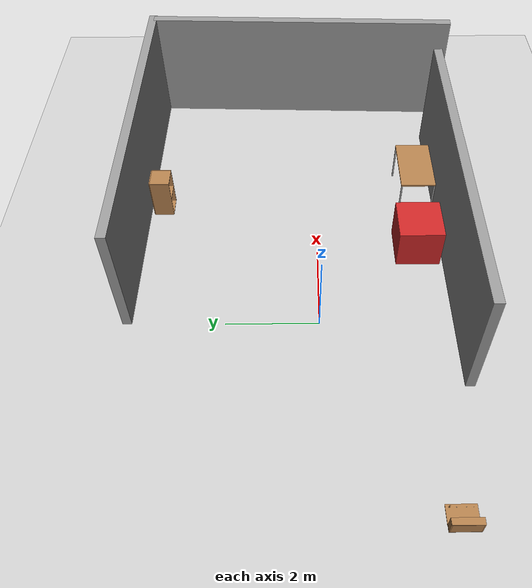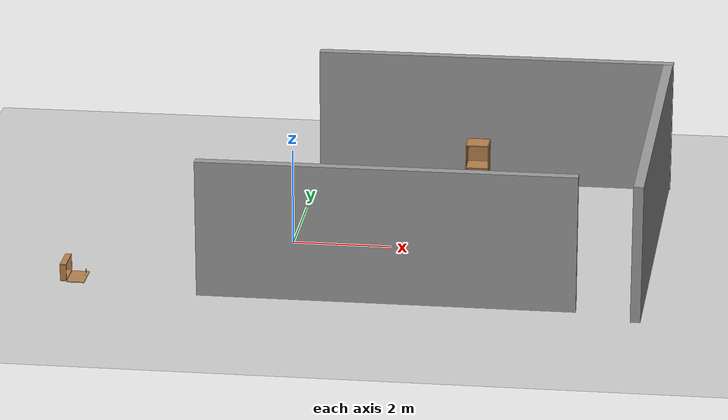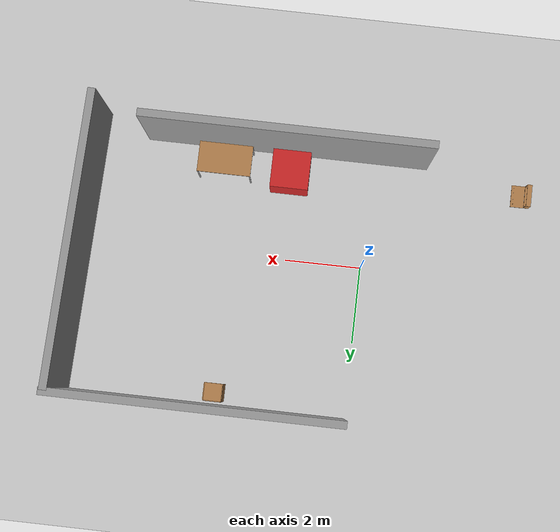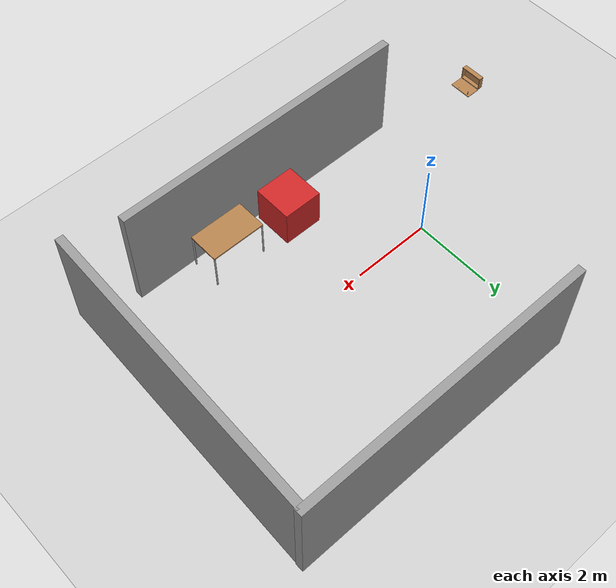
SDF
<sdf version="1.6">
 <world name="default">
  <model name="ground_plane">
   <static>1</static>
   <link name="link">
    <collision name="collision">
     <geometry><plane><normal>0 0 1</normal><size>100 100</size></plane></geometry>
     <surface><friction><ode><mu>100</mu><mu2>50</mu2></ode></friction></surface>
    </collision>
    <visual name="visual">
     <transparency>1</transparency>
     <cast_shadows>0</cast_shadows>
     <geometry><plane><normal>0 0 1</normal><size>100 100</size></plane></geometry>
     <material>
      <script><uri>file://media/materials/scripts/gazebo.material</uri><name>Gazebo/Grey</name></script>
     </material>
    </visual>
   </link>
  </model>
  <model name="grey_wall_clone">
   <static>1</static>
   <link name="link">
    <pose>0 0 1.4 0 -0 0</pose>
    <collision name="collision"><geometry><box><size>7.5 0.2 2.8</size></box></geometry></collision>
    <visual name="visual">
     <cast_shadows>0</cast_shadows>
     <geometry><box><size>7.5 0.2 2.8</size></box></geometry>
     <material>
      <script>
       <uri>model://grey_wall/materials/scripts</uri>
       <uri>model://grey_wall/materials/textures</uri>
       <name>vrc/grey_wall</name>
      </script>
     </material>
    </visual>
   </link>
   <pose>2.24313 -2.95687 0 0 -0 0</pose>
  </model>
  <model name="grey_wall_clone_0_clone_clone">
   <static>1</static>
   <link name="link">
    <pose>0 0 1.4 0 -0 0</pose>
    <collision name="collision"><geometry><box><size>7.5 0.2 2.8</size></box></geometry></collision>
    <visual name="visual">
     <cast_shadows>0</cast_shadows>
     <geometry><box><size>7.5 0.2 2.8</size></box></geometry>
     <material>
      <script>
       <uri>model://grey_wall/materials/scripts</uri>
       <uri>model://grey_wall/materials/textures</uri>
       <name>vrc/grey_wall</name>
      </script>
     </material>
    </visual>
   </link>
   <pose>3.76581 4.09121 0 0 -0 0</pose>
  </model>
  <model name="table">
   <static>0</static>
   <link name="link">
    <collision name="surface">
     <pose>0 0 1 0 -0 0</pose>
     <geometry><box><size>1.5 0.8 0.03</size></box></geometry>
     <surface><friction><ode><mu>0.6</mu><mu2>0.6</mu2></ode></friction></surface>
    </collision>
    <visual name="visual1">
     <pose>0 0 1 0 -0 0</pose>
     <geometry><box><size>1.4 0.8 0.04</size></box></geometry>
     <material>
      <script><uri>file://media/materials/scripts/gazebo.material</uri><name>Gazebo/Wood</name></script>
     </material>
    </visual>
    <collision name="front_left_leg">
     <pose>0.68 0.38 0.5 0 -0 0</pose>
     <geometry><cylinder><radius>0.02</radius><length>1</length></cylinder></geometry>
    </collision>
    <visual name="front_left_leg">
     <pose>0.68 0.38 0.5 0 -0 0</pose>
     <geometry><cylinder><radius>0.02</radius><length>1</length></cylinder></geometry>
     <material>
      <script><uri>file://media/materials/scripts/gazebo.material</uri><name>Gazebo/Grey</name></script>
     </material>
    </visual>
    <collision name="front_right_leg">
     <pose>0.68 -0.38 0.5 0 -0 0</pose>
     <geometry><cylinder><radius>0.02</radius><length>1</length></cylinder></geometry>
    </collision>
    <visual name="front_right_leg">
     <pose>0.68 -0.38 0.5 0 -0 0</pose>
     <geometry><cylinder><radius>0.02</radius><length>1</length></cylinder></geometry>
     <material>
      <script><uri>file://media/materials/scripts/gazebo.material</uri><name>Gazebo/Grey</name></script>
     </material>
    </visual>
    <collision name="back_right_leg">
     <pose>-0.68 -0.38 0.5 0 -0 0</pose>
     <geometry><cylinder><radius>0.02</radius><length>1</length></cylinder></geometry>
    </collision>
    <visual name="back_right_leg">
     <pose>-0.68 -0.38 0.5 0 -0 0</pose>
     <geometry><cylinder><radius>0.02</radius><length>1</length></cylinder></geometry>
     <material>
      <script><uri>file://media/materials/scripts/gazebo.material</uri><name>Gazebo/Grey</name></script>
     </material>
    </visual>
    <collision name="back_left_leg">
     <pose>-0.68 0.38 0.5 0 -0 0</pose>
     <geometry><cylinder><radius>0.02</radius><length>1</length></cylinder></geometry>
    </collision>
    <visual name="back_left_leg">
     <pose>-0.68 0.38 0.5 0 -0 0</pose>
     <geometry><cylinder><radius>0.02</radius><length>1</length></cylinder></geometry>
     <material>
      <script><uri>file://media/materials/scripts/gazebo.material</uri><name>Gazebo/Grey</name></script>
     </material>
    </visual>
    <inertial>
     <inertia><ixx>1</ixx><ixy>0</ixy><ixz>0</ixz><iyy>1</iyy><iyz>0</iyz><izz>1</izz></inertia>
     <mass>1</mass>
    </inertial>
   </link>
   <pose>3.83416 -2.36948 -1e-06 0 1e-06 0</pose>
  </model>
  <model name="cabinet">
   <static>1</static>
   <link name="cabinet_bottom_plate">
    <inertial>
     <pose>0 0 -1 0 -0 0</pose>
     <inertia><ixx>2.05</ixx><ixy>0</ixy><ixz>0</ixz><iyy>2.05</iyy><iyz>0</iyz><izz>2.05</izz></inertia>
     <mass>25</mass>
    </inertial>
    <collision name="cabinet_bottom_plate_geom">
     <pose>0 0 0.01 0 -0 0</pose>
     <geometry><box><size>0.45 0.45 0.02</size></box></geometry>
    </collision>
    <visual name="cabinet_bottom_plate_geom_visual">
     <pose>0 0 0.01 0 -0 0</pose>
     <geometry><box><size>0.45 0.45 0.02</size></box></geometry>
     <material>
      <script><uri>file://media/materials/scripts/gazebo.material</uri><name>Gazebo/Wood</name></script>
     </material>
    </visual>
    <collision name="cabinet_bottom_plate_geom_cabinet_back_plate">
     <pose>0.235 0 0.51 0 -0 0</pose>
     <geometry><box><size>0.02 0.45 1.02</size></box></geometry>
    </collision>
    <visual name="cabinet_bottom_plate_geom_cabinet_back_plate_visual">
     <pose>0.235 0 0.51 0 -0 0</pose>
     <geometry><box><size>0.02 0.45 1.02</size></box></geometry>
     <material>
      <script><uri>file://media/materials/scripts/gazebo.material</uri><name>Gazebo/Wood</name></script>
     </material>
    </visual>
    <collision name="cabinet_bottom_plate_geom_cabinet_left_plate">
     <pose>0 0.235 0.51 0 -0 0</pose>
     <geometry><box><size>0.45 0.02 1.02</size></box></geometry>
    </collision>
    <visual name="cabinet_bottom_plate_geom_cabinet_left_plate_visual">
     <pose>0 0.235 0.51 0 -0 0</pose>
     <geometry><box><size>0.45 0.02 1.02</size></box></geometry>
     <material>
      <script><uri>file://media/materials/scripts/gazebo.material</uri><name>Gazebo/Wood</name></script>
     </material>
    </visual>
    <collision name="cabinet_bottom_plate_geom_cabinet_middle_plate">
     <pose>0 0 0.51 0 -0 0</pose>
     <geometry><box><size>0.45 0.45 0.02</size></box></geometry>
    </collision>
    <visual name="cabinet_bottom_plate_geom_cabinet_middle_plate_visual">
     <pose>0 0 0.51 0 -0 0</pose>
     <geometry><box><size>0.45 0.45 0.02</size></box></geometry>
     <material>
      <script><uri>file://media/materials/scripts/gazebo.material</uri><name>Gazebo/Wood</name></script>
     </material>
    </visual>
    <collision name="cabinet_bottom_plate_geom_cabinet_right_plate">
     <pose>0 -0.235 0.51 0 -0 0</pose>
     <geometry><box><size>0.45 0.02 1.02</size></box></geometry>
    </collision>
    <visual name="cabinet_bottom_plate_geom_cabinet_right_plate_visual">
     <pose>0 -0.235 0.51 0 -0 0</pose>
     <geometry><box><size>0.45 0.02 1.02</size></box></geometry>
     <material>
      <script><uri>file://media/materials/scripts/gazebo.material</uri><name>Gazebo/Wood</name></script>
     </material>
    </visual>
    <collision name="cabinet_bottom_plate_geom_cabinet_top_plate">
     <pose>0 0 1.01 0 -0 0</pose>
     <geometry><box><size>0.45 0.45 0.02</size></box></geometry>
    </collision>
    <visual name="cabinet_bottom_plate_geom_cabinet_top_plate_visual">
     <pose>0 0 1.01 0 -0 0</pose>
     <geometry><box><size>0.45 0.45 0.02</size></box></geometry>
     <material>
      <script><uri>file://media/materials/scripts/gazebo.material</uri><name>Gazebo/Wood</name></script>
     </material>
    </visual>
   </link>
   <pose>3.44115 3.673 0 0 -0 1.57331</pose>
  </model>
  <model name="wooden_case_wooden_peg">
   <link name="wooden_case::base">
    <pose>0 0 0.024 0 -0 0</pose>
    <inertial>
     <pose>-0.022184 0 0.171592 0 -0 0</pose>
     <mass>3.96264</mass>
     <inertia>
      <ixx>0.213536</ixx>
      <ixy>0</ixy>
      <ixz>0.000779377</ixz>
      <iyy>0.0708943</iyy>
      <iyz>0</iyz>
      <izz>0.154604</izz>
     </inertia>
    </inertial>
    <collision name="collision_back">
     <pose>-0.053975 0 0.1778 0 -0 0</pose>
     <geometry><box><size>0.01905 0.5461 0.3175</size></box></geometry>
     <surface>
      <contact>
       <poissons_ratio>0.347</poissons_ratio>
       <elastic_modulus>8.8e+09</elastic_modulus>
       <ode><kp>100000</kp><kd>100</kd><max_vel>100</max_vel><min_depth>0.001</min_depth></ode>
      </contact>
      <friction>
       <torsional>
        <coefficient>1</coefficient>
        <use_patch_radius>0</use_patch_radius>
        <surface_radius>0.01</surface_radius>
       </torsional>
      </friction>
     </surface>
    </collision>
    <visual name="visual_back">
     <pose>-0.053975 0 0.1778 0 -0 0</pose>
     <geometry><box><size>0.01905 0.5461 0.3175</size></box></geometry>
     <material>
      <script><uri>file://media/materials/scripts/gazebo.material</uri><name>Gazebo/Wood</name></script>
     </material>
    </visual>
    <collision name="collision_bottom">
     <pose>0 0 0.009525 0 -0 0</pose>
     <geometry><box><size>0.127 0.5842 0.01905</size></box></geometry>
     <surface>
      <contact>
       <poissons_ratio>0.347</poissons_ratio>
       <elastic_modulus>8.8e+09</elastic_modulus>
       <ode><kp>100000</kp><kd>100</kd><max_vel>100</max_vel><min_depth>0.001</min_depth></ode>
      </contact>
      <friction>
       <torsional>
        <coefficient>1</coefficient>
        <use_patch_radius>0</use_patch_radius>
        <surface_radius>0.01</surface_radius>
       </torsional>
      </friction>
     </surface>
    </collision>
    <visual name="visual_bottom">
     <pose>0 0 0.009525 0 -0 0</pose>
     <geometry><box><size>0.127 0.5842 0.01905</size></box></geometry>
     <material>
      <script><uri>file://media/materials/scripts/gazebo.material</uri><name>Gazebo/Wood</name></script>
     </material>
    </visual>
    <collision name="collision_top">
     <pose>0 0 0.346075 0 -0 0</pose>
     <geometry><box><size>0.127 0.5842 0.01905</size></box></geometry>
     <surface>
      <contact>
       <poissons_ratio>0.347</poissons_ratio>
       <elastic_modulus>8.8e+09</elastic_modulus>
       <ode><kp>100000</kp><kd>100</kd><max_vel>100</max_vel><min_depth>0.001</min_depth></ode>
      </contact>
      <friction>
       <torsional>
        <coefficient>1</coefficient>
        <use_patch_radius>0</use_patch_radius>
        <surface_radius>0.01</surface_radius>
       </torsional>
      </friction>
     </surface>
    </collision>
    <visual name="visual_top">
     <pose>0 0 0.346075 0 -0 0</pose>
     <geometry><box><size>0.127 0.5842 0.01905</size></box></geometry>
     <material>
      <script><uri>file://media/materials/scripts/gazebo.material</uri><name>Gazebo/Wood</name></script>
     </material>
    </visual>
    <collision name="collision_left">
     <pose>0 -0.282575 0.1778 0 -0 0</pose>
     <geometry><box><size>0.127 0.01905 0.3175</size></box></geometry>
     <surface>
      <contact>
       <poissons_ratio>0.347</poissons_ratio>
       <elastic_modulus>8.8e+09</elastic_modulus>
       <ode><kp>100000</kp><kd>100</kd><max_vel>100</max_vel><min_depth>0.001</min_depth></ode>
      </contact>
      <friction>
       <torsional>
        <coefficient>1</coefficient>
        <use_patch_radius>0</use_patch_radius>
        <surface_radius>0.01</surface_radius>
       </torsional>
      </friction>
     </surface>
    </collision>
    <visual name="visual_left">
     <pose>0 -0.282575 0.1778 0 -0 0</pose>
     <geometry><box><size>0.127 0.01905 0.3175</size></box></geometry>
     <material>
      <script><uri>file://media/materials/scripts/gazebo.material</uri><name>Gazebo/Wood</name></script>
     </material>
    </visual>
    <collision name="collision_right">
     <pose>0 0.282575 0.1778 0 -0 0</pose>
     <geometry><box><size>0.127 0.01905 0.3175</size></box></geometry>
     <surface>
      <contact>
       <poissons_ratio>0.347</poissons_ratio>
       <elastic_modulus>8.8e+09</elastic_modulus>
       <ode><kp>100000</kp><kd>100</kd><max_vel>100</max_vel><min_depth>0.001</min_depth></ode>
      </contact>
      <friction>
       <torsional>
        <coefficient>1</coefficient>
        <use_patch_radius>0</use_patch_radius>
        <surface_radius>0.01</surface_radius>
       </torsional>
      </friction>
     </surface>
    </collision>
    <visual name="visual_right">
     <pose>0 0.282575 0.1778 0 -0 0</pose>
     <geometry><box><size>0.127 0.01905 0.3175</size></box></geometry>
     <material>
      <script><uri>file://media/materials/scripts/gazebo.material</uri><name>Gazebo/Wood</name></script>
     </material>
    </visual>
    <collision name="collision_block_left">
     <pose>0.0095 -0.2151 -0.012 0 -0 0</pose>
     <geometry><box><size>0.108 0.05 0.024</size></box></geometry>
     <surface>
      <contact>
       <poissons_ratio>0.347</poissons_ratio>
       <elastic_modulus>8.8e+09</elastic_modulus>
       <ode><kp>100000</kp><kd>100</kd><max_vel>100</max_vel><min_depth>0.001</min_depth></ode>
      </contact>
      <friction>
       <torsional>
        <coefficient>1</coefficient>
        <use_patch_radius>0</use_patch_radius>
        <surface_radius>0.01</surface_radius>
       </torsional>
      </friction>
     </surface>
    </collision>
    <visual name="visual_block_left">
     <pose>0.0095 -0.2151 -0.012 0 -0 0</pose>
     <geometry><box><size>0.108 0.05 0.024</size></box></geometry>
     <material>
      <script><uri>file://media/materials/scripts/gazebo.material</uri><name>Gazebo/Wood</name></script>
     </material>
    </visual>
    <collision name="collision_block_right">
     <pose>0.0095 0.2151 -0.012 0 -0 0</pose>
     <geometry><box><size>0.108 0.05 0.024</size></box></geometry>
     <surface>
      <contact>
       <poissons_ratio>0.347</poissons_ratio>
       <elastic_modulus>8.8e+09</elastic_modulus>
       <ode><kp>100000</kp><kd>100</kd><max_vel>100</max_vel><min_depth>0.001</min_depth></ode>
      </contact>
      <friction>
       <torsional>
        <coefficient>1</coefficient>
        <use_patch_radius>0</use_patch_radius>
        <surface_radius>0.01</surface_radius>
       </torsional>
      </friction>
     </surface>
    </collision>
    <visual name="visual_block_right">
     <pose>0.0095 0.2151 -0.012 0 -0 0</pose>
     <geometry><box><size>0.108 0.05 0.024</size></box></geometry>
     <material>
      <script><uri>file://media/materials/scripts/gazebo.material</uri><name>Gazebo/Wood</name></script>
     </material>
    </visual>
   </link>
   <link name="wooden_case::lid">
    <pose>0.243775 0 0.009525 0 -0 0</pose>
    <inertial>
     <mass>1.97874</mass>
     <inertia>
      <ixx>0.0563367</ixx>
      <ixy>0</ixy>
      <ixz>0</ixz>
      <iyy>0.020911</iyy>
      <iyz>0</iyz>
      <izz>0.0771281</izz>
     </inertia>
    </inertial>
    <collision name="collision">
     <geometry><box><size>0.3556 0.5842 0.01905</size></box></geometry>
     <surface>
      <contact>
       <poissons_ratio>0.347</poissons_ratio>
       <elastic_modulus>8.8e+09</elastic_modulus>
       <ode><kp>100000</kp><kd>100</kd><max_vel>100</max_vel><min_depth>0.001</min_depth></ode>
      </contact>
      <friction>
       <torsional>
        <coefficient>1</coefficient>
        <use_patch_radius>0</use_patch_radius>
        <surface_radius>0.01</surface_radius>
       </torsional>
      </friction>
     </surface>
    </collision>
    <visual name="visual">
     <geometry><box><size>0.3556 0.5842 0.01905</size></box></geometry>
     <material>
      <script><uri>file://media/materials/scripts/gazebo.material</uri><name>Gazebo/Wood</name></script>
     </material>
    </visual>
    <visual name="tee_nut_1">
     <pose>0.122 -0.216 0 0 -0 0</pose>
     <geometry><cylinder><radius>0.00635</radius><length>0.0192405</length></cylinder></geometry>
     <material>
      <script><uri>file://media/materials/scripts/gazebo.material</uri><name>Gazebo/Grey</name></script>
     </material>
    </visual>
    <visual name="tee_nut_2">
     <pose>0.122 -0.088 0 0 -0 0</pose>
     <geometry><cylinder><radius>0.00635</radius><length>0.0192405</length></cylinder></geometry>
     <material>
      <script><uri>file://media/materials/scripts/gazebo.material</uri><name>Gazebo/Grey</name></script>
     </material>
    </visual>
    <visual name="tee_nut_3">
     <pose>0.122 0.088 0 0 -0 0</pose>
     <geometry><cylinder><radius>0.00635</radius><length>0.0192405</length></cylinder></geometry>
     <material>
      <script><uri>file://media/materials/scripts/gazebo.material</uri><name>Gazebo/Grey</name></script>
     </material>
    </visual>
    <visual name="tee_nut_4">
     <pose>0.122 0.216 0 0 -0 0</pose>
     <geometry><cylinder><radius>0.00635</radius><length>0.0192405</length></cylinder></geometry>
     <material>
      <script><uri>file://media/materials/scripts/gazebo.material</uri><name>Gazebo/Grey</name></script>
     </material>
    </visual>
   </link>
   <joint name="wooden_case::lid_hinge" type="revolute">
    <pose>-0.1778 0 0.01905 0 -0 0</pose>
    <parent>wooden_case::base</parent>
    <child>wooden_case::lid</child>
    <axis>
     <xyz>0 1 0</xyz>
     <limit><upper>0.523599</upper><lower>-1.5708</lower></limit>
     <use_parent_model_frame>0</use_parent_model_frame>
     <dynamics><spring_reference>0</spring_reference><spring_stiffness>0</spring_stiffness></dynamics>
    </axis>
   </joint>
   <link name="peg::link">
    <pose>0.365774 0.216 0.05905 0 -0 0</pose>
    <inertial>
     <mass>0.0175</mass>
     <inertia>
      <ixx>9.74923e-06</ixx>
      <ixy>0</ixy>
      <ixz>0</ixz>
      <iyy>9.74923e-06</iyy>
      <iyz>0</iyz>
      <izz>8.31797e-07</izz>
     </inertia>
    </inertial>
    <collision name="collision">
     <geometry><cylinder><radius>0.00975</radius><length>0.08</length></cylinder></geometry>
     <surface>
      <contact>
       <poissons_ratio>0.347</poissons_ratio>
       <elastic_modulus>8.8e+09</elastic_modulus>
       <ode><kp>100000</kp><kd>100</kd><max_vel>100</max_vel><min_depth>0.001</min_depth></ode>
      </contact>
      <friction>
       <torsional>
        <coefficient>1</coefficient>
        <use_patch_radius>0</use_patch_radius>
        <surface_radius>0.01</surface_radius>
       </torsional>
      </friction>
     </surface>
    </collision>
    <visual name="visual">
     <geometry><cylinder><radius>0.00975</radius><length>0.08</length></cylinder></geometry>
     <material>
      <script><uri>file://media/materials/scripts/gazebo.material</uri><name>Gazebo/Wood</name></script>
     </material>
    </visual>
   </link>
   <joint name="case_peg" type="revolute">
    <child>peg::link</child>
    <parent>wooden_case::lid</parent>
    <axis>
     <xyz>0 0 1</xyz>
     <limit><upper>0</upper><lower>0</lower></limit>
     <use_parent_model_frame>0</use_parent_model_frame>
     <dynamics><spring_reference>0</spring_reference><spring_stiffness>0</spring_stiffness></dynamics>
    </axis>
   </joint>
   <pose>-4.25055 -2.39495 -0.001057 -1e-06 -0.000428 0</pose>
  </model>
  <model name="unit_box_0_clone">
   <pose>2.10371 -2.28423 0.499995 1e-05 -0 0</pose>
   <link name="link">
    <inertial>
     <mass>1</mass>
     <inertia>
      <ixx>0.166667</ixx>
      <ixy>0</ixy>
      <ixz>0</ixz>
      <iyy>0.166667</iyy>
      <iyz>0</iyz>
      <izz>0.166667</izz>
     </inertia>
    </inertial>
    <collision name="collision"><geometry><box><size>1 1 1</size></box></geometry></collision>
    <visual name="visual">
     <geometry><box><size>1 1 1</size></box></geometry>
     <material>
      <script><name>Gazebo/Red</name><uri>file://media/materials/scripts/gazebo.material</uri></script>
     </material>
    </visual>
   </link>
  </model>
  <model name="grey_wall_0">
   <static>1</static>
   <link name="link">
    <pose>0 0 1.4 0 -0 0</pose>
    <collision name="collision"><geometry><box><size>7.5 0.2 2.8</size></box></geometry></collision>
    <visual name="visual">
     <cast_shadows>0</cast_shadows>
     <geometry><box><size>7.5 0.2 2.8</size></box></geometry>
     <material>
      <script>
       <uri>model://grey_wall/materials/scripts</uri>
       <uri>model://grey_wall/materials/textures</uri>
       <name>vrc/grey_wall</name>
      </script>
     </material>
    </visual>
   </link>
   <pose>7.28723 0.313669 0 0 -0 1.54068</pose>
  </model>
 </world>
</sdf>
